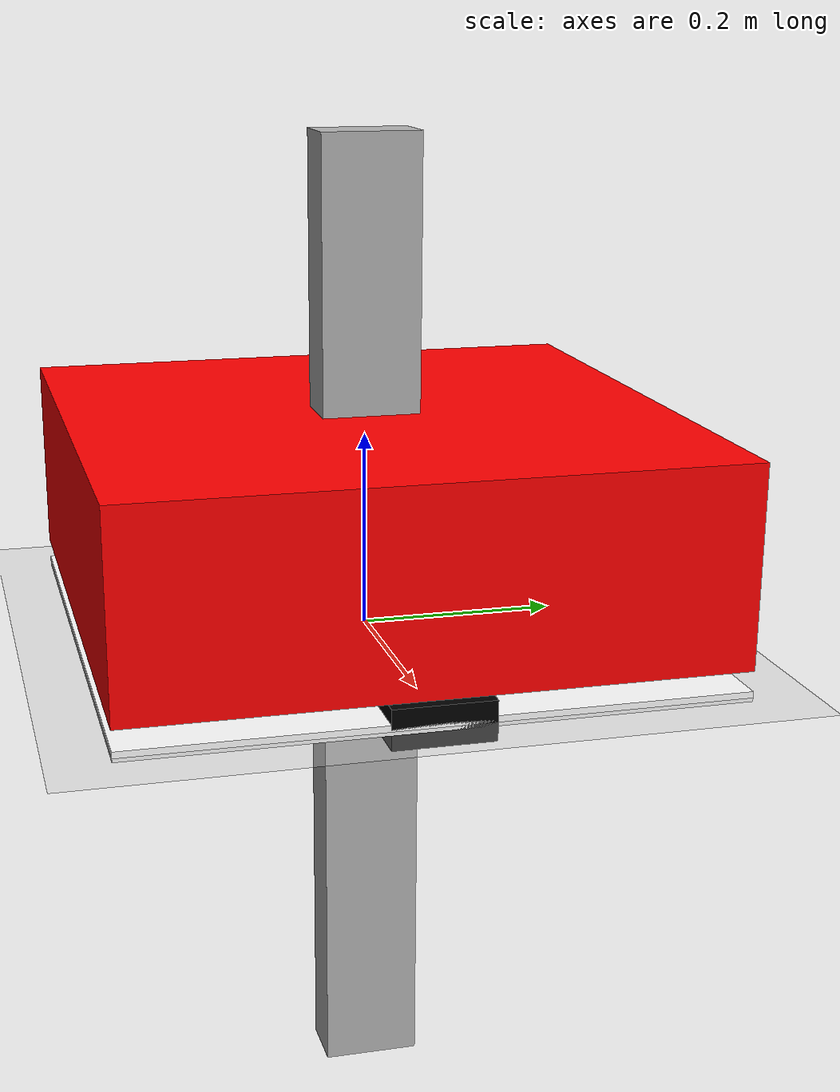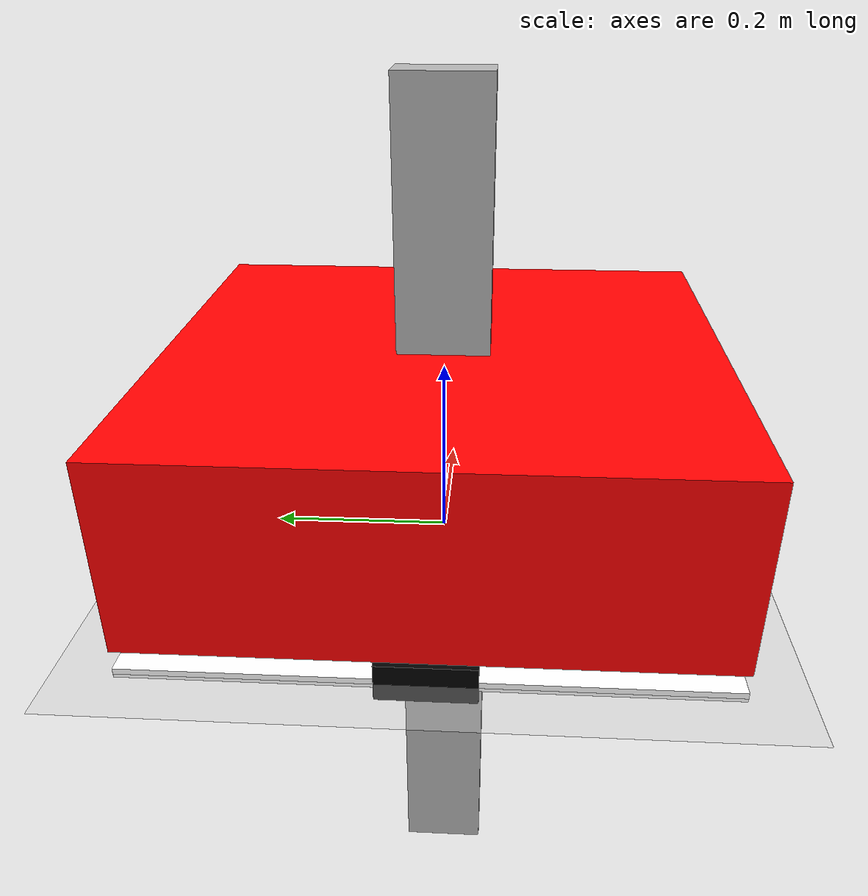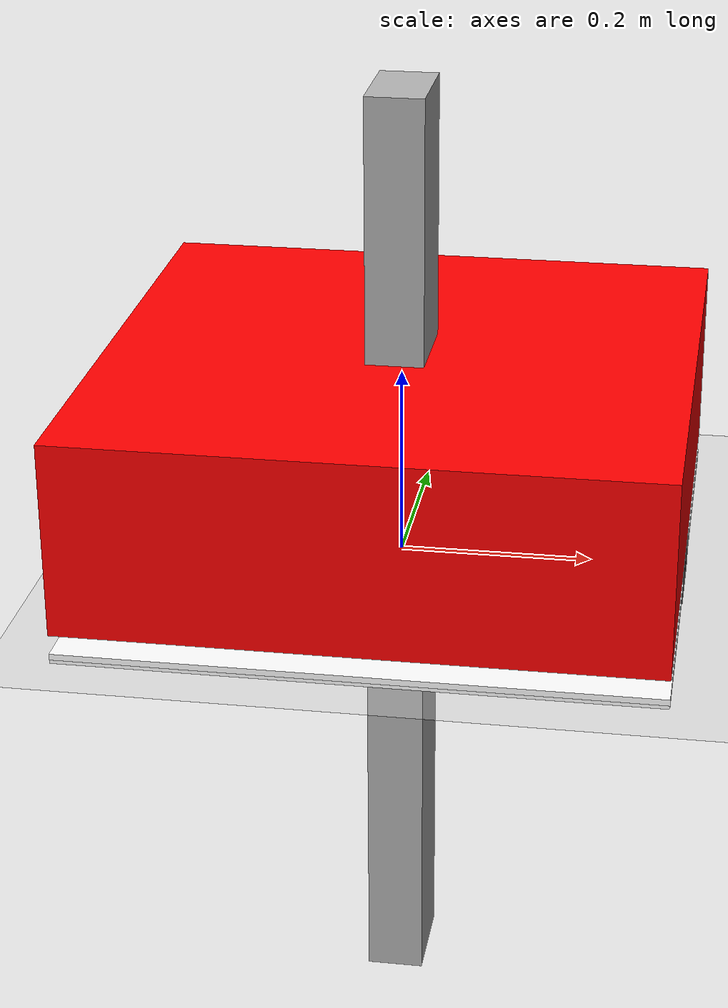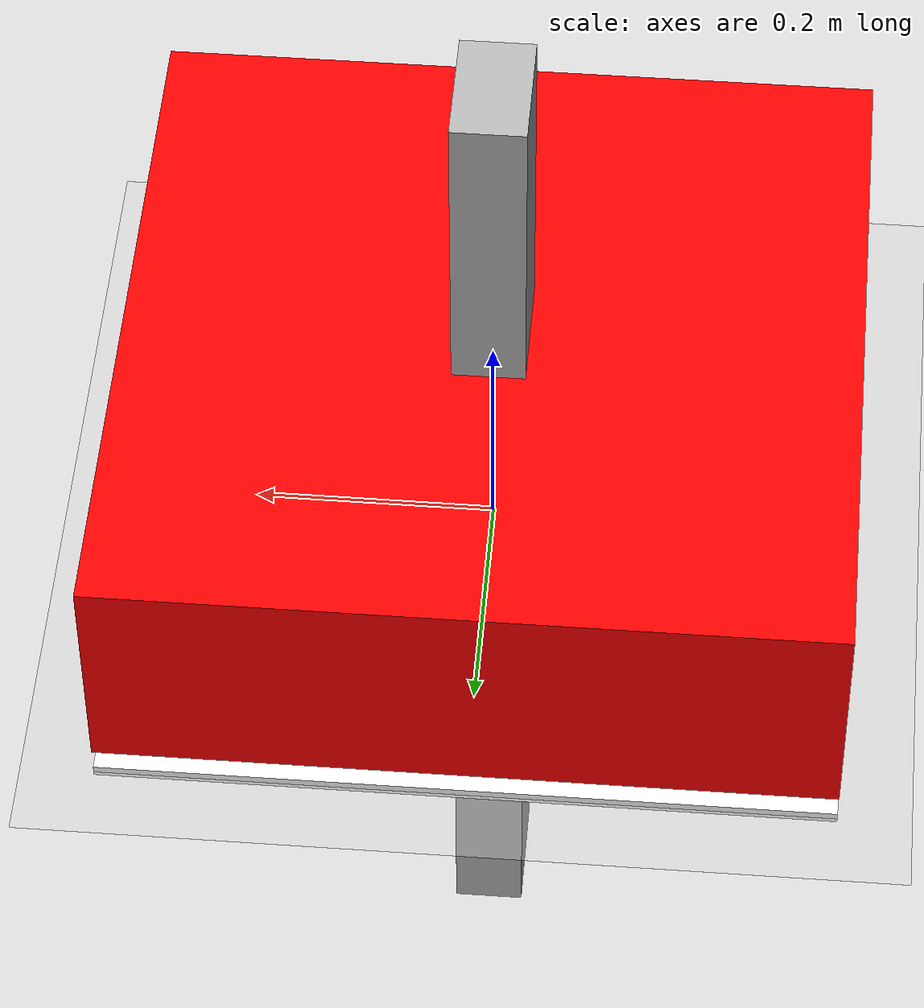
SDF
<?xml version="1.0" ?>
<sdf version="1.8">
    <world name="world_demo">
      <physics name="1ms" type="dart">
        <max_step_size>0.001</max_step_size>
        <real_time_factor>1.0</real_time_factor>
      </physics>

      <plugin
        filename="libignition-gazebo-physics-system.so"
        name="ignition::gazebo::systems::Physics">
      </plugin>

      <plugin
        filename="libignition-gazebo-user-commands-system.so"
        name="ignition::gazebo::systems::UserCommands">
      </plugin>

      <plugin
        filename="libignition-gazebo-scene-broadcaster-system.so"
        name="ignition::gazebo::systems::SceneBroadcaster">
      </plugin>

      <gui fullscreen="0">
        <!-- 3D scene -->
        <plugin filename="MinimalScene" name="3D View">
          <gz-gui>
            <title>3D View</title>
            <property type="bool" key="showTitleBar">false</property>
            <property type="string" key="state">docked</property>
          </gz-gui>

          <engine>ogre2</engine>
          <scene>scene</scene>
          <ambient_light>0.4 0.4 0.4</ambient_light>
          <background_color>0.8 0.8 0.8</background_color>
          <camera_pose>-6 0 6 0 0.5 0</camera_pose>
          <camera_clip>
            <near>0.25</near>
            <far>25000</far>
          </camera_clip>
        </plugin>
        <!-- Other GUI plugins unchanged -->
      </gui>
        <plugin filename="GzSceneManager" name="Scene Manager">
          <gz-gui>
            <property key="resizable" type="bool">false</property>
            <property key="width" type="double">5</property>
            <property key="height" type="double">5</property>
            <property key="state" type="string">floating</property>
            <property key="showTitleBar" type="bool">false</property>
          </gz-gui>
        </plugin>

        <!-- World control -->
        <plugin filename="WorldControl" name="World control">
            <gz-gui>
                <title>World control</title>
                <property type="bool" key="showTitleBar">false</property>
                <property type="bool" key="resizable">false</property>
                <property type="double" key="height">72</property>
                <property type="double" key="width">121</property>
                <property type="double" key="z">1</property>

                <property type="string" key="state">floating</property>
                <anchors target="3D View">
                <line own="left" target="left"/>
                <line own="bottom" target="bottom"/>
                </anchors>
            </gz-gui>

            <play_pause>true</play_pause>
            <step>true</step>
            <start_paused>true</start_paused>
            <service>/world/world_demo/control</service>
            <stats_topic>/world/world_demo/stats</stats_topic>
        </plugin>

        <!-- World statistics -->
        <plugin filename="WorldStats" name="World stats">
            <gz-gui>
                <title>World stats</title>
                <property type="bool" key="showTitleBar">false</property>
                <property type="bool" key="resizable">false</property>
                <property type="double" key="height">110</property>
                <property type="double" key="width">290</property>
                <property type="double" key="z">1</property>

                <property type="string" key="state">floating</property>
                <anchors target="3D View">
                <line own="right" target="right"/>
                <line own="bottom" target="bottom"/>
                </anchors>
            </gz-gui>

            <sim_time>true</sim_time>
            <real_time>true</real_time>
            <real_time_factor>true</real_time_factor>
            <iterations>true</iterations>
            <topic>/world/world_demo/stats</topic>
        </plugin>

        <!-- Entity tree -->
        <plugin filename="EntityTree" name="Entity tree" />

          <light type="directional" name="sun">
              <cast_shadows>true</cast_shadows>
              <pose>0 0 10 0 0 0</pose>
              <diffuse>0.8 0.8 0.8 1</diffuse>
              <specular>0.2 0.2 0.2 1</specular>
              <attenuation>
                  <range>1000</range>
                  <constant>0.9</constant>
                  <linear>0.01</linear>
                  <quadratic>0.001</quadratic>
              </attenuation>
              <direction>-0.5 0.1 -0.9</direction>
          </light>

          <model name="ground_plane">
              <static>true</static>
              <link name="link">
                  <collision name="collision">
                  <geometry>
                      <plane>
                      <normal>0 0 1</normal>
                      </plane>
                  </geometry>
                  </collision>
                  <visual name="visual">
                  <geometry>
                      <plane>
                      <normal>0 0 1</normal>
                      <size>100 100</size>
                      </plane>
                  </geometry>
                  <material>
                      <ambient>0.8 0.8 0.8 1</ambient>
                      <diffuse>0.8 0.8 0.8 1</diffuse>
                      <specular>0.8 0.8 0.8 1</specular>
                  </material>
                  </visual>
              </link>
          </model>

      <model name='krever' canonical_link='base_link'>
        <pose relative_to='world'>0 0 0 0 0 0</pose>

          <link name="base_footprint">
          </link>

          <!--base chassis-->
          <link name="base_link">
            <visual name="visual">
                <geometry>
                    <box>
                        <size>0.6 0.6 0.2</size>
                    </box>
                </geometry>
                <pose>0 0 0.125 0 0 0</pose>
                <material>
                    <ambient>1 0 0 1</ambient>
                </material>
            </visual>
            <collision name="collision">
                <geometry>
                    <box>
                        <size>0.6 0.6 0.2</size>
                    </box>
                </geometry>
                <pose>0 0 0.125 0 0 0</pose>
                <material>
                    <ambient>1 0 0 1</ambient>
                </material>
            </collision>
            <inertial>
              <pose>0 0 0.125 0 0 0</pose>
              <mass>15.0</mass>
              <inertia>
                  <ixx>0.5</ixx>
                  <iyy>0.5</iyy>
                  <izz>0.9</izz>
                  <ixy>0</ixy>
                  <ixz>0</ixz>
                  <iyz>0</iyz>
              </inertia>
            </inertial>
          </link>

          <joint name="base_joint" type="fixed">
              <parent>base_footprint</parent>
              <child>base_link</child>
              <pose>0 0 0 0 0 0</pose>
          </joint>

          <!-- Lidar -->
          <link name="lidar">
            <visual name="visual">
                <geometry>
                    <cylinder>
                        <radius>0.1</radius>
                        <length>0.05</length>
                    </cylinder>
                </geometry>
                <pose>0 0 0 0 0 0</pose>
                <material>
                    <ambient>0 0 1 1</ambient>
                </material>
            </visual>
            <collision name="collision">
                <geometry>
                    <cylinder>
                        <radius>0.1</radius>
                        <length>0.05</length>
                    </cylinder>
                </geometry>
                <pose>0 0 0 0 0 0</pose>
                <material>
                    <ambient>0 0 1 1</ambient>
                </material>
            </collision>
            <inertial>
                <pose>0 0 0 0 0 0</pose>
                <mass>0.4</mass>
                <inertia>
                    <ixx>0.0026</ixx>
                    <iyy>0.0026</iyy>
                    <izz>0.0003</izz>
                    <ixy>0</ixy>
                    <ixz>0</ixz>
                    <iyz>0</iyz>
                </inertia>
            </inertial>
          </link>

          <joint name="base_lidar_joint" type="fixed">
              <parent>base_link</parent>
              <child>lidar</child>
              <pose>0 0 0.25 0 0 0</pose>
          </joint>

          <!-- left wheel -->
          <link name="left_wheel">
            <visual name="visual">
                <geometry>
                    <cylinder>
                        <radius>0.1</radius>
                        <length>0.03</length>
                    </cylinder>
                </geometry>
                <pose>0 0 0 1.57 0 0</pose>
                <material>
                    <ambient>0 1 0 1</ambient>
                    <diffuse>0 1 0 1</diffuse>
                    <specular>0 0 0 1</specular>
                    <emissive>0 0 0 1</emissive>
                </material>
            </visual>
            <collision name="collision">
                <geometry>
                    <cylinder>
                        <radius>0.1</radius>
                        <length>0.03</length>
                    </cylinder>
                </geometry>
                <pose>0 0 0 1.57 0 0</pose>
            </collision>
            <inertial>
                <pose>0 0 0 0 0 0</pose>
                <mass>0.8</mass>
                <inertia>
                    <ixx>0.004</ixx>
                    <iyy>0.004</iyy>
                    <izz>0.0006</izz>
                    <ixy>0.0</ixy>
                    <ixz>0.0</ixz>
                    <iyz>0.0</iyz>
                </inertia>
            </inertial>
          </link>

          <joint name="base_left_wheel_joint" type="continuous">
              <parent>base_link</parent>
              <child>left_wheel</child>
              <pose>0 0.315 0.05 0 0 0</pose>
              <axis>
                  <xyz>0 1 0</xyz>
              </axis>
          </joint>

          <!-- Right wheel -->

          <link name="right_wheel">
            <visual name="visual">
                <geometry>
                    <cylinder>
                        <radius>0.1</radius>
                        <length>0.03</length>
                    </cylinder>
                </geometry>
                <pose>0 0 0 1.57 0 0</pose>
                <material>
                    <ambient>0 1 0 1</ambient>
                    <diffuse>0 1 0 1</diffuse>
                    <specular>0 0 0 1</specular>
                    <emissive>0 0 0 1</emissive>
                </material>
            </visual>
            <collision name="collision">
                <geometry>
                    <cylinder>
                        <radius>0.1</radius>
                        <length>0.03</length>
                    </cylinder>
                </geometry>
                <pose>0 0 0 1.57 0 0</pose>
            </collision>
            <inertial>
                <pose>0 0 0 0 0 0</pose>
                <mass>0.8</mass>
                <inertia>
                    <ixx>0.004</ixx>
                    <iyy>0.004</iyy>
                    <izz>0.0006</izz>
                    <ixy>0.0</ixy>
                    <ixz>0.0</ixz>
                    <iyz>0.0</iyz>
                </inertia>
            </inertial>
          </link>

          <joint name="base_right_wheel_joint" type="revolute">
              <parent>base_link</parent>
              <child>right_wheel</child>
              <pose>0 -0.315 0.05 0 0 0</pose>
              <axis>
                  <xyz>0 1 0</xyz>
              </axis>
          </joint>

          <!-- caster wheel1 -->
          <link name="caster_wheel1">
            <visual name="visual">
                <geometry>
                    <sphere>
                        <radius>0.025</radius>
                    </sphere>
                </geometry>
                <pose>0 0 0 1.57 0 0</pose>
                <material>
                    <ambient>0 0 1 1</ambient>
                    <diffuse>0 0 1 1</diffuse>
                    <specular>0 0 0 1</specular>
                    <emissive>0 0 0 1</emissive>
                </material>
            </visual>
            <collision name="collision">
                <geometry>
                    <sphere>
                        <radius>0.025</radius>
                    </sphere>
                </geometry>
                <pose>0 0 0 1.57 0 0</pose>
            </collision>
            <inertial>
                <pose>0 0 0 0 0 0</pose>
                <mass>0.1</mass>
                <inertia>
                    <ixx>0.000025</ixx>
                    <iyy>0.000025</iyy>
                    <izz>0.000025</izz>
                    <ixy>0.0</ixy>
                    <ixz>0.0</ixz>
                    <iyz>0.0</iyz>
                </inertia>
            </inertial>
          </link>

          <joint name="body_caster_wheel_joint1" type="fixed">
              <parent>base_link</parent>
              <child>caster_wheel1</child>
              <pose>0.25 0 0.0 0 0 0</pose>
          </joint>

          <!-- Caster Wheel 2 -->
          <link name="caster_wheel2">
            <visual name="visual">
                <geometry>
                    <sphere>
                        <radius>0.025</radius>
                    </sphere>
                </geometry>
                <pose>0 0 0 1.57 0 0</pose>
                <material>
                    <ambient>0 0 1 1</ambient>
                    <diffuse>0 0 1 1</diffuse>
                    <specular>0 0 0 1</specular>
                    <emissive>0 0 0 1</emissive>
                </material>
            </visual>
            <collision name="collision">
                <geometry>
                    <sphere>
                        <radius>0.025</radius>
                    </sphere>
                </geometry>
                <pose>0 0 0 1.57 0 0</pose>
            </collision>
            <inertial>
                <pose>0 0 0 0 0 0</pose>
                <mass>0.1</mass>
                <inertia>
                    <ixx>0.000025</ixx>
                    <iyy>0.000025</iyy>
                    <izz>0.000025</izz>
                    <ixy>0.0</ixy>
                    <ixz>0.0</ixz>
                    <iyz>0.0</iyz>
                </inertia>
            </inertial>
          </link>

          <joint name="body_caster_wheel_joint2" type="fixed">
              <parent>base_link</parent>
              <child>caster_wheel2</child>
              <pose>-0.25 0 0.0 0 0 0</pose>
          </joint>

          <!--supporint rod-->
          <link name="support_rod">
            <visual name="visual">
                <geometry>
                    <box>
                        <size>0.06 0.1 1.0</size>
                    </box>
                </geometry>
                <material>
                    <ambient>0.7 0.7 0.7 1.0</ambient>
                    <diffuse>0.7 0.7 0.7 1.0</diffuse>
                    <specular>0 0 0 1</specular>
                    <emissive>0 0 0 1</emissive>
                </material>
            </visual>
            <collision name="collision">
                <geometry>
                    <box>
                        <size>0.06 0.1 1.0</size>
                    </box>
                </geometry>
            </collision>
            <inertial>
                <pose>0 0 0 0 0 0</pose>
                <mass>7</mass>
                <inertia>
                    <ixx>1.2625</ixx>
                    <iyy>1.2545</iyy>
                    <izz>0.017</izz>
                    <ixy>0.0</ixy>
                    <ixz>0.0</ixz>
                    <iyz>0.0</iyz>
                </inertia>
            </inertial>
          </link>

          <joint name="base_support_joint" type="fixed">
              <parent>base_link</parent>
              <child>support_rod</child>
              <pose>-0.265 0 0.76 0 0 0</pose>
          </joint>

          <!-- Center Rod -->
          <link name="center_rod">
            <visual name="visual">
              <geometry>
                <box>
                 <size>0.4 0.1 0.04</size>
                </box>
              </geometry>
              <material>
                <ambient>0 0 0 1</ambient> <!-- Black color -->
                <diffuse>0 0 0 1</diffuse>
                <specular>0 0 0 1</specular>
                <emissive>0 0 0 1</emissive>
              </material>
            </visual>
            <collision name="collision">
              <geometry>
                <box>
                 <size>0.4 0.1 0.04</size>
                </box>
              </geometry>
            </collision>
            <inertial>
              <pose>0 0 0 0 0 0</pose>
              <mass>2</mass>
              <inertia>
                <ixx>0.002</ixx>
                <iyy>0.027</iyy>
                <izz>0.028</izz>
                <ixy>0.0</ixy>
                <ixz>0.0</ixz>
                <iyz>0.0</iyz>
              </inertia>
            </inertial>
          </link>

          <joint name="center_rod_joint" type="fixed">
            <parent>support_rod</parent>
            <child>center_rod</child>
            <pose>0 0 0.555 0 0 1.57</pose>
            <limit lower="0.0" upper="0.0" effort="0.0" velocity="0.0"/>
          </joint>

          <link name="left_rod">
            <visual name="visual">
                <geometry>
                    <box>
                        <size>0.6 0.1 0.04</size>
                    </box>
                </geometry>
                <material>
                    <ambient>0 0 0 1</ambient>
                    <diffuse>0 0 0 1</diffuse>
                    <specular>0 0 0 1</specular>
                    <emissive>0 0 0 1</emissive>
                </material>
            </visual>
            <collision name="collision">
                <geometry>
                    <box>
                        <size>0.6 0.1 0.04</size>
                    </box>
                </geometry>
            </collision>
            <inertial>
                <pose>0 0 0 0 0 0</pose>
                <mass>2</mass>
                <inertia>
                    <ixx>0.002</ixx>
                    <iyy>0.06</iyy>
                    <izz>0.061</izz>
                    <ixy>0.0</ixy>
                    <ixz>0.0</ixz>
                    <iyz>0.0</iyz>
                </inertia>
            </inertial>
          </link>

          <joint name="left_rod_joint" type="fixed">
              <parent>support_rod</parent>
              <child>left_rod</child>
              <pose>0.25 0.25 0.555 0 0 0</pose>
          </joint>

          <!-- Right Rod -->
          <link name="right_rod">
            <visual name="visual">
              <geometry>
                <box>
                 <size>0.6 0.1 0.04</size>
                </box>
              </geometry>
              <material>
                <ambient>0 0 0 1</ambient> <!-- Black color -->
                <diffuse>0 0 0 1</diffuse>
                <specular>0 0 0 1</specular>
                <emissive>0 0 0 1</emissive>
              </material>
            </visual>
            <collision name="collision">
              <geometry>
                <box>
                 <size>0.6 0.1 0.04</size>
                </box>
              </geometry>
            </collision>
            <inertial>
              <pose>0 0 0 0 0 0</pose>
              <mass>2</mass>
              <inertia>
                <ixx>0.002</ixx>
                <iyy>0.06</iyy>
                <izz>0.061</izz>
                <ixy>0.0</ixy>
                <ixz>0.0</ixz>
                <iyz>0.0</iyz>
              </inertia>
            </inertial>
          </link>

          <joint name="right_rod_joint" type="fixed">
            <parent>support_rod</parent>
            <child>right_rod</child>
            <pose>0.25 -0.25 0.555 0 0 0</pose>
            <limit lower="0.0" upper="0.0" effort="0.0" velocity="0.0"/>
          </joint>

          <!--tray-->
          <link name="tray">
            <visual name="visual">
                <geometry>
                    <box>
                        <size>0.6 0.6 0.01</size>
                    </box>
                </geometry>
                <material>
                    <ambient>1.0 1.0 1.0 1.0</ambient>
                    <diffuse>1.0 1.0 1.0 1.0</diffuse>
                    <specular>0 0 0 1</specular>
                    <emissive>0 0 0 1</emissive>
                </material>
            </visual>
            <collision name="collision">
                <geometry>
                    <box>
                        <size>0.6 0.6 0.01</size>
                    </box>
                </geometry>
            </collision>
            <inertial>
                <pose>0 0 0 0 0 0</pose>
                <mass>5</mass>
                <inertia>
                    <ixx>0.154</ixx>
                    <iyy>0.154</iyy>
                    <izz>0.3</izz>
                    <ixy>0.0</ixy>
                    <ixz>0.0</ixz>
                    <iyz>0.0</iyz>
                </inertia>
            </inertial>
          </link>

          <joint name="tray_joint" type="fixed">
              <parent>support_rod</parent>
              <child>tray</child>
              <pose>0.27 0.0 -0.465 0 0 0</pose>
          </joint>

      </model>

    </world>
</sdf>
